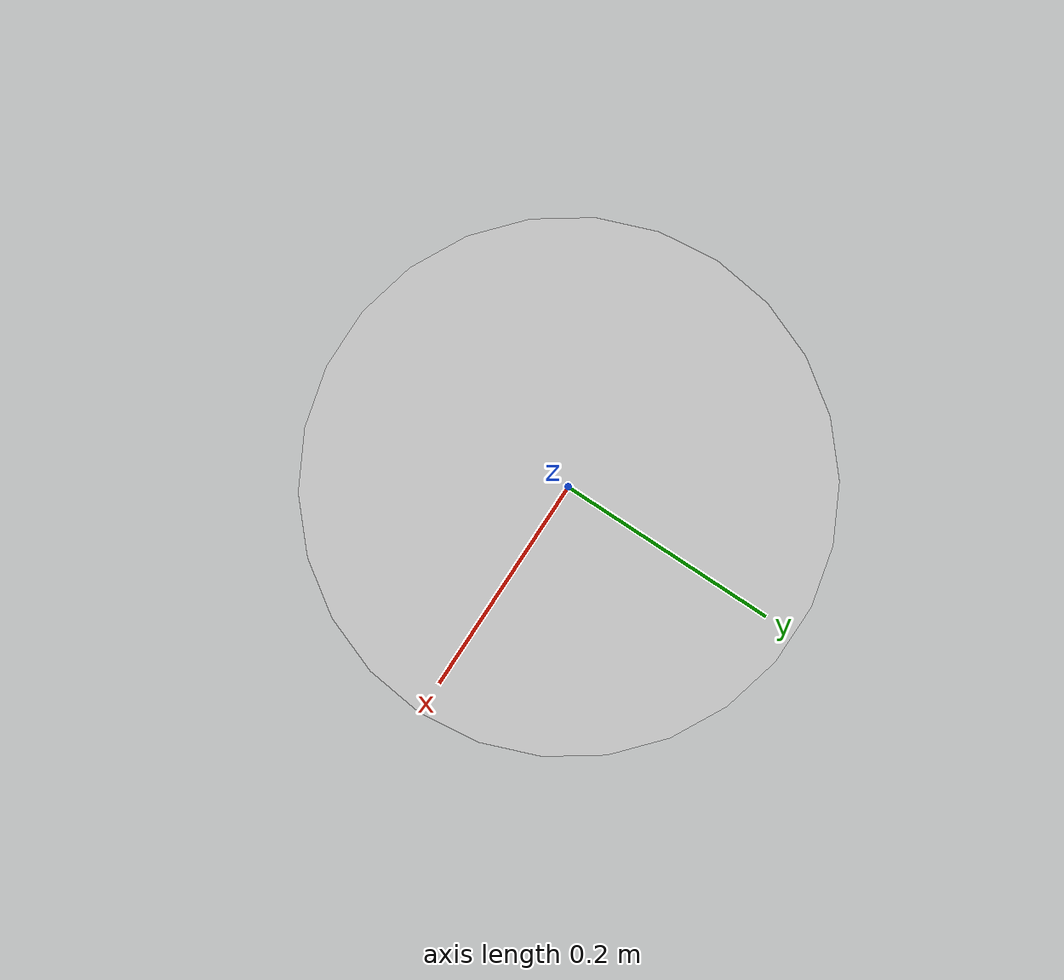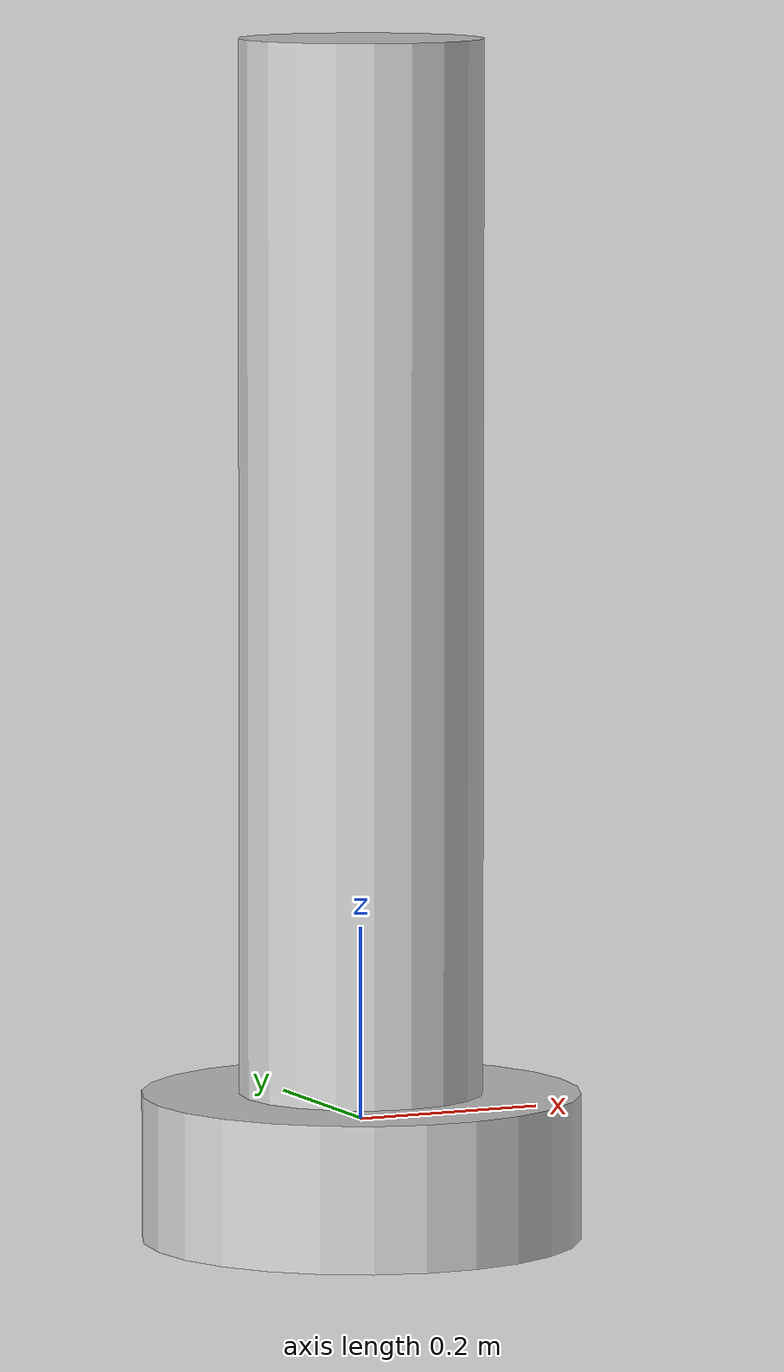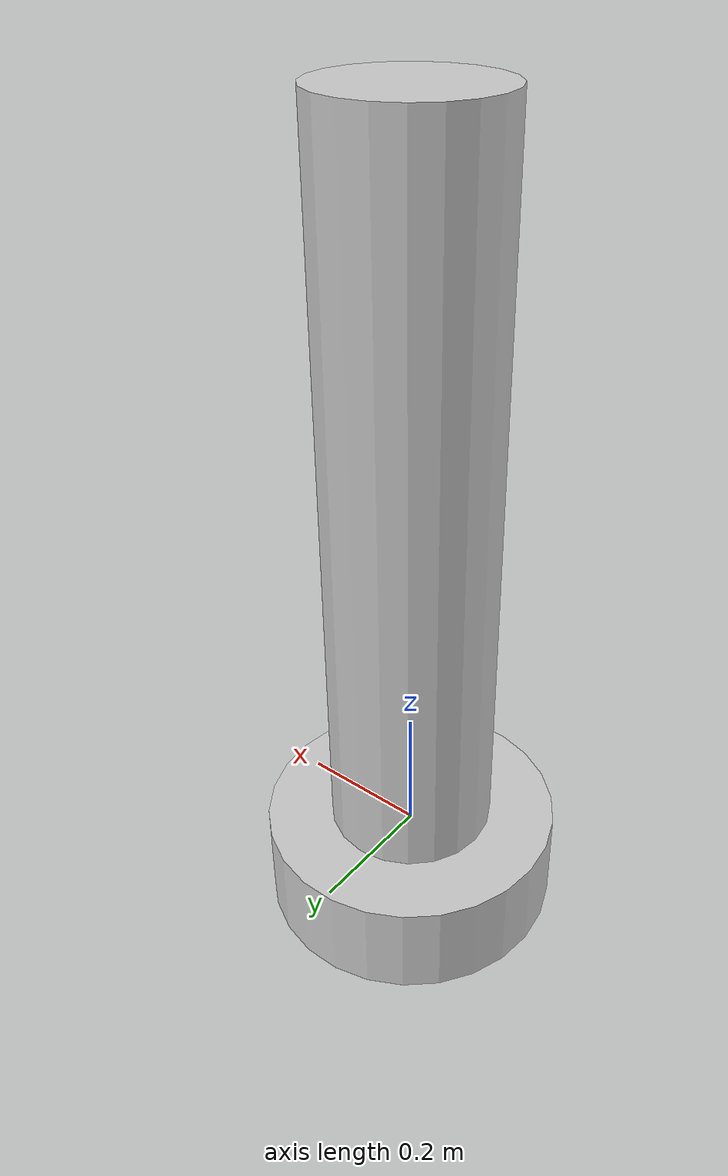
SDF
<?xml version="1.0"?>
<sdf version="1.5">
  <model name="white_marker_can">
    <static>true</static>
    <pose>0 0 -0.1223 0 0 0</pose>
    <link name="base_link">
      <visual name="visual">
        <geometry>
           <mesh>
            <uri>file://markers/white_marker_can.dae</uri>
          </mesh>
        </geometry>
      </visual>
      <collision name="collision">
        <geometry>
           <mesh>
            <uri>file://markers/white_marker_can.dae</uri>
          </mesh>
        </geometry>
      </collision>
    </link>
  </model>
</sdf>
